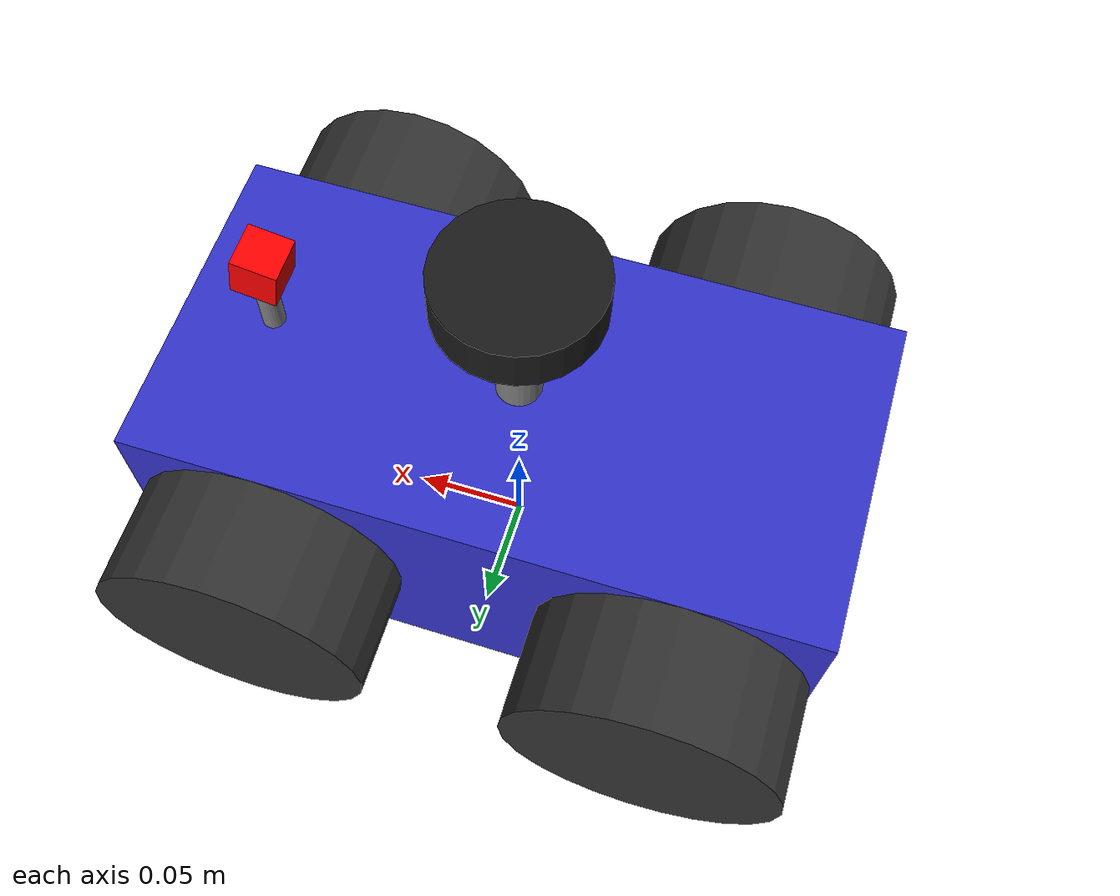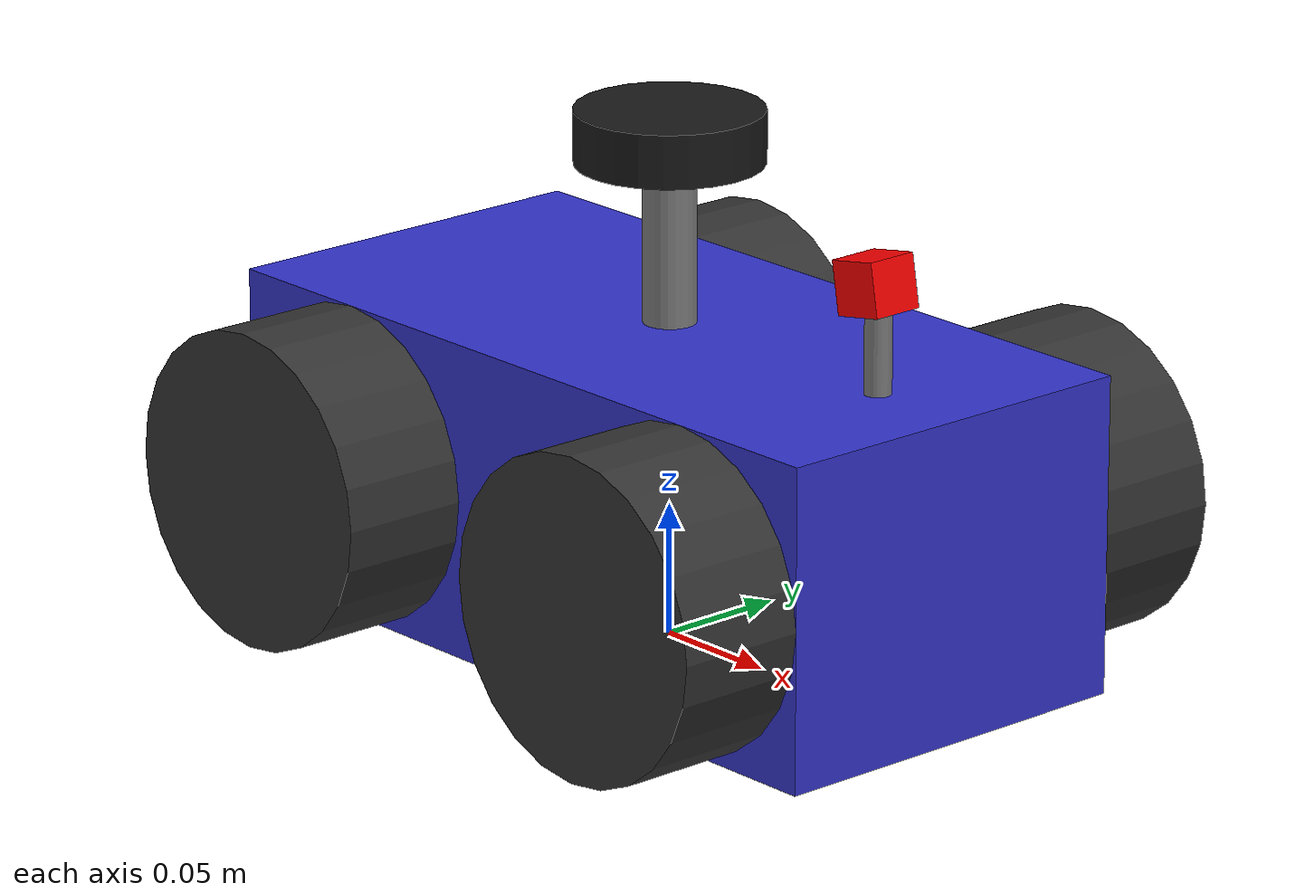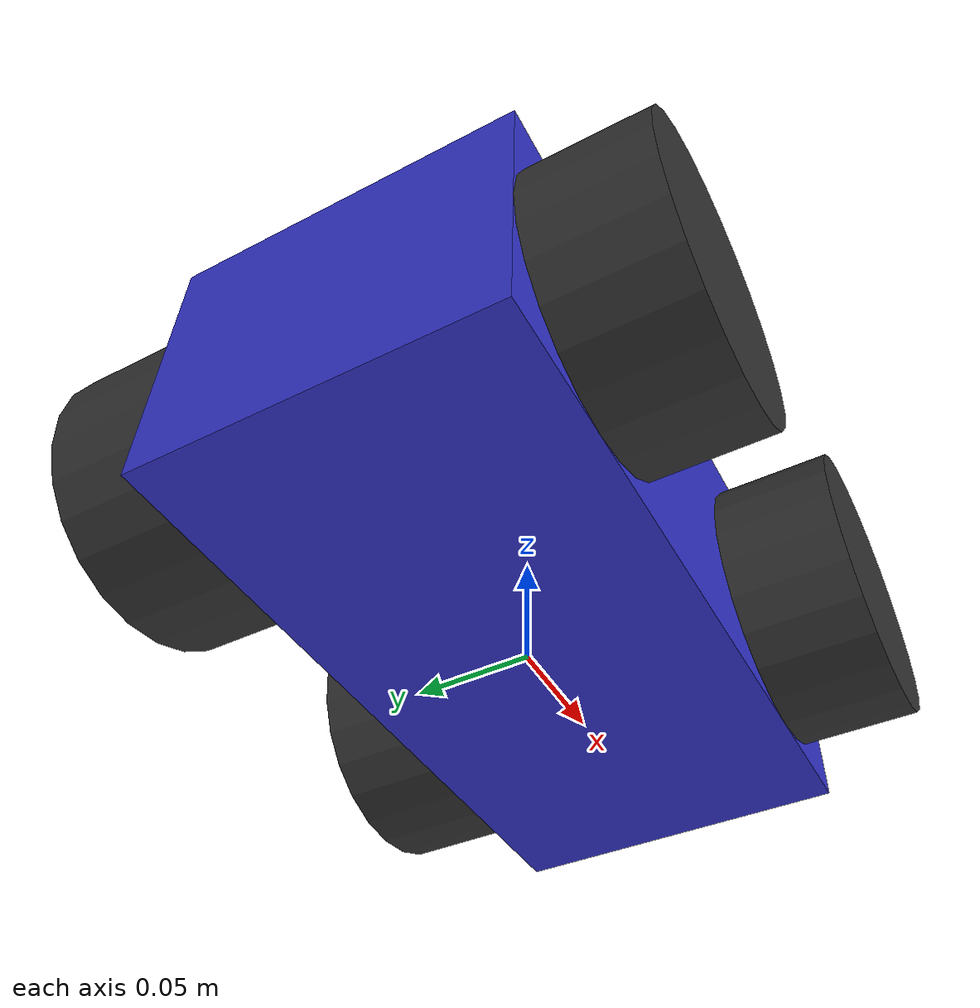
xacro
<!-- 组合小车底盘与摄像头与雷达 -->
<robot name="my_car_camera" xmlns:xacro="http://wiki.ros.org/xacro">
    <xacro:include filename="00car_param.xacro" />
    <xacro:include filename="01car_box.xacro" />
    <xacro:include filename="02car_wheel.xacro" />
    <xacro:include filename="03car_camera.xacro" />
    <xacro:include filename="04car_laser.xacro" />
</robot>

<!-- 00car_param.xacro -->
<robot xmlns:xacro="http://www.ros.org/wiki/xacro" name="mecanum_robot">
  <!-- 定义一些常用参数 -->
  <xacro:property name="base_length" value="0.3" />
  <xacro:property name="base_width" value="0.15" />
  <xacro:property name="base_height" value="0.12" />
  <xacro:property name="wheel_radius" value="0.06" />
  <xacro:property name="wheel_width" value="0.05" />
  <xacro:property name="wheel_mass" value="0.3" />
  <xacro:property name="base_mass" value="3.0" />
  <xacro:property name="camera_support_radius" value="0.005"/>
  <xacro:property name="camera_support_height" value="0.03"/>
  <xacro:property name="camera_size" value="0.02" />
  <xacro:property name="laser_radius" value="0.035" />
  <xacro:property name="laser_height" value="0.02" />
  <xacro:property name="support_radius" value="0.01" />
  <xacro:property name="support_height" value="0.06" />
</robot>

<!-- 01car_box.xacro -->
<robot xmlns:xacro="http://www.ros.org/wiki/xacro" name="mecanum_robot">
  <!-- base_footprint: 地面投影坐标系 -->
  <link name="base_footprint">
    <visual>
      <origin xyz="0 0 0" rpy="0 0 0"/>
      <geometry>
        <sphere radius="0.001"/>
      </geometry>
    </visual>
  </link>
  <joint name="base_footprint_joint" type="fixed">
    <parent link="base_footprint"/>
    <child link="base_link"/>
    <origin xyz="0 0 ${wheel_radius}" rpy="0 0 0"/>
  </joint>
  <!-- 底盘基座 -->
  <link name="base_link">
    <visual>
      <origin xyz="0 0 0" rpy="0 0 0"/>
      <geometry>
        <box size="${base_length} ${base_width} ${base_height}"/>
      </geometry>
      <material name="blue">
        <color rgba="0.2 0.2 0.8 1.0"/>
      </material>
    </visual>
    <collision>
      <origin xyz="0 0 0" rpy="0 0 0"/>
      <geometry>
        <box size="${base_length} ${base_width} ${base_height}"/>
      </geometry>
    </collision>
    <inertial>
      <mass value="${base_mass}"/>
      <origin xyz="0 0 0" rpy="0 0 0"/>
      <inertia ixx="${base_mass*(base_width*base_width+base_height*base_height)/12}"
               ixy="0" ixz="0"
               iyy="${base_mass*(base_length*base_length+base_height*base_height)/12}"
               iyz="0"
               izz="${base_mass*(base_length*base_length+base_width*base_width)/12}"/>
    </inertial>
  </link>
  <!-- 底盘Gazebo配置 -->
  <gazebo reference="base_link">
    <material>Gazebo/Red</material>
    <gravity>true</gravity>
  </gazebo>
</robot>

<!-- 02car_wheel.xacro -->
<robot xmlns:xacro="http://www.ros.org/wiki/xacro" name="mecanum_robot">
    <!-- 麦克纳姆轮宏定义 -->
    <xacro:macro name="mecanum_wheel" params="prefix reflect_lr reflect_fb">
        <link name="${prefix}_wheel">
            <visual>
                <origin xyz="0 0 0" rpy="${pi/2} 0 0"/>
                <geometry>
                    <cylinder radius="${wheel_radius}" length="${wheel_width}"/>
                </geometry>
                <material name="black">
                    <color rgba="0.2 0.2 0.2 1.0"/>
                </material>
            </visual>
            <collision>
                <origin xyz="0 0 0" rpy="${pi/2} 0 0"/>
                <geometry>
                    <cylinder radius="${wheel_radius}" length="${wheel_width}"/>
                </geometry>
            </collision>
            <inertial>
                <mass value="${wheel_mass}"/>
                <origin xyz="0 0 0" rpy="${pi/2} 0 0"/>
                <inertia ixx="${wheel_mass*(3*wheel_radius*wheel_radius+wheel_width*wheel_width)/12}"
                 ixy="0" ixz="0"
                 iyy="${wheel_mass*(3*wheel_radius*wheel_radius+wheel_width*wheel_width)/12}"
                 iyz="0"
                 izz="${wheel_mass*wheel_radius*wheel_radius/2}"/>
            </inertial>
        </link>
        <joint name="${prefix}_wheel_joint" type="continuous">
            <parent link="base_link"/>
            <child link="${prefix}_wheel"/>
            <origin xyz="${reflect_fb*(base_length/2-wheel_radius)} ${reflect_lr*(base_width/2+wheel_width/2)} 0" rpy="0 0 0"/>
            <axis xyz="0 1 0"/>
        </joint>
        <!-- Gazebo配置 -->
        <gazebo reference="${prefix}_wheel">
            <material>Gazebo/Orange</material>
            <mu1>1</mu1>
            <mu2>1</mu2>
            <kp>1000000.0</kp>
            <kd>10.0</kd>
            <minDepth>0.001</minDepth>
            <!-- 最小接触深度 -->
            <maxVel>1.0</maxVel>
            <!-- 最大速度 -->
            <fdir1>1 0 0</fdir1>
            <!-- 摩擦方向 -->
        </gazebo>
    </xacro:macro>
    <!-- 创建四个麦克纳姆轮 -->
    <xacro:mecanum_wheel prefix="front_left" reflect_lr="1" reflect_fb="1"/>
    <xacro:mecanum_wheel prefix="front_right" reflect_lr="-1" reflect_fb="1"/>
    <xacro:mecanum_wheel prefix="rear_left" reflect_lr="1" reflect_fb="-1"/>
    <xacro:mecanum_wheel prefix="rear_right" reflect_lr="-1" reflect_fb="-1"/>
    <!-- 传动实现:用于连接控制器与关节 -->
    <xacro:macro name="joint_trans" params="joint_name">
        <!-- Transmission is important to link the joints and the controller -->
        <transmission name="${joint_name}_trans">
            <type>transmission_interface/SimpleTransmission</type>
            <joint name="${joint_name}">
                <hardwareInterface>hardware_interface/VelocityJointInterface</hardwareInterface>
            </joint>
            <actuator name="${joint_name}_motor">
                <hardwareInterface>hardware_interface/VelocityJointInterface</hardwareInterface>
                <mechanicalReduction>1</mechanicalReduction>
            </actuator>
        </transmission>
    </xacro:macro>
    <!-- 每一个驱动轮都需要配置传动装置 -->
    <xacro:joint_trans joint_name="front_left_wheel_joint" />
    <xacro:joint_trans joint_name="front_right_wheel_joint" />
    <xacro:joint_trans joint_name="rear_left_wheel_joint" />
    <xacro:joint_trans joint_name="rear_right_wheel_joint" />
    <!-- 麦克纳姆轮控制器 -->
    <gazebo>
        <plugin name="mecanum_controller" filename="libgazebo_ros_planar_move.so">
            <commandTopic>cmd_vel</commandTopic>
            <odometryTopic>odom</odometryTopic>
            <odometryFrame>odom</odometryFrame>
            <leftFrontJoint>front_left_wheel_joint</leftFrontJoint>
            <rightFrontJoint>front_right_wheel_joint</rightFrontJoint>
            <leftRearJoint>rear_left_wheel_joint</leftRearJoint>
            <rightRearJoint>rear_right_wheel_joint</rightRearJoint>
            <wheelSeparation>${base_width + wheel_width}</wheelSeparation>
            <wheelDiameter>${2*wheel_radius}</wheelDiameter>
            <odometryRate>100.0</odometryRate>
            <robotBaseFrame>base_footprint</robotBaseFrame>
            <publishTF>true</publishTF>
            <publishOdomTF>true</publishOdomTF>
            <torque>20</torque>
            <!-- 添加足够的驱动扭矩 -->
        </plugin>
    </gazebo>
</robot>

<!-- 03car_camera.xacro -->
<robot xmlns:xacro="http://www.ros.org/wiki/xacro" name="mecanum_robot">
    <!-- 摄像头支架 -->
    <link name="camera_support">
        <visual>
            <origin xyz="0 0 0" rpy="0 0 0" />
            <geometry>
                <cylinder radius="${camera_support_radius}" length="${camera_support_height}" />
            </geometry>
            <material name="Gray">
                <color rgba="0.5 0.5 0.5 1.0" />
            </material>
        </visual>
        <collision>
            <origin xyz="0 0 0" rpy="0 0 0" />
            <geometry>
                <cylinder radius="${camera_support_radius}" length="${camera_support_height}" />
            </geometry>
        </collision>
        <inertial>
            <mass value="0.1" />
            <origin xyz="0 0 0" rpy="0 0 0" />
            <inertia ixx="0.00001" ixy="0" ixz="0" iyy="0.00001" iyz="0" izz="0.00001" />
        </inertial>
    </link>
    <joint name="camera_support_joint" type="fixed">
        <parent link="base_link" />
        <child link="camera_support" />
        <origin xyz="${base_length/2 - camera_size*2} 0 ${base_height/2 + camera_support_height/2}"
            rpy="0 0 0" />
    </joint>
    <gazebo reference="camera_support">
        <material>Gazebo/Gray</material>
    </gazebo>
    <!-- 中间支架 -->
    <link name="camera_mount" />

    <joint name="camera_mount_joint" type="fixed">
        <parent link="camera_support" />
        <child link="camera_mount" />
        <origin xyz="0 0 ${camera_support_height/2}" rpy="0 -0.174 0" />
    </joint>
    <!-- 摄像头 -->
    <link name="camera_link">
        <visual>
            <origin xyz="0 0 0" rpy="0 0 0" />
            <geometry>
                <box size="${camera_size} ${camera_size} ${camera_size}" />
            </geometry>
            <material name="red">
                <color rgba="1.0 0.0 0.0 1.0" />
            </material>
        </visual>
        <collision>
            <origin xyz="0 0 0" rpy="0 0 0" />
            <geometry>
                <box size="${camera_size} ${camera_size} ${camera_size}" />
            </geometry>
        </collision>
        <inertial>
            <mass value="0.1" />
            <origin xyz="0 0 0" rpy="0 0 0" />
            <inertia ixx="0.00001" ixy="0" ixz="0" iyy="0.00001" iyz="0" izz="0.00001" />
        </inertial>
    </link>
    <joint name="camera_joint" type="fixed">
        <parent link="camera_mount" />
        <child link="camera_link" />
        <origin xyz="0 0 ${camera_size/2}" rpy="0 0 0" />
    </joint>
    <!-- 摄像头 Gazebo 插件 -->
    <gazebo reference="camera_link">
        <material>Gazebo/Gray</material>
        <sensor type="camera" name="camera">
            <update_rate>30.0</update_rate>
            <camera name="head">
                <horizontal_fov>1.3962634</horizontal_fov>
                <image>
                    <width>640</width>
                    <height>480</height>
                    <format>R8G8B8</format>
                </image>
                <clip>
                    <near>0.02</near>
                    <far>300</far>
                </clip>
                <noise>
                    <type>gaussian</type>
                    <mean>0.0</mean>
                    <stddev>0.007</stddev>
                </noise>
            </camera>
            <plugin name="camera_controller" filename="libgazebo_ros_camera.so">
                <alwaysOn>true</alwaysOn>
                <updateRate>30.0</updateRate>
                <cameraName>camera</cameraName>
                <imageTopicName>image_raw</imageTopicName>
                <cameraInfoTopicName>camera_info</cameraInfoTopicName>
                <frameName>camera_link</frameName>
            </plugin>
        </sensor>
    </gazebo>
</robot>

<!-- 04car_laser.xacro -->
<robot xmlns:xacro="http://www.ros.org/wiki/xacro" name="mecanum_robot">
    <!-- 2D激光雷达支架 -->
    <link name="laser_support_link">
        <visual>
            <origin xyz="0 0 0" rpy="0 0 0"/>
            <geometry>
                <cylinder radius="${support_radius}" length="${support_height}"/>
            </geometry>
            <material name="grey">
                <color rgba="0.5 0.5 0.5 1.0"/>
            </material>
        </visual>
        <collision>
            <origin xyz="0 0 0" rpy="0 0 0"/>
            <geometry>
                <cylinder radius="${support_radius}" length="${support_height}"/>
            </geometry>
        </collision>
        <inertial>
            <mass value="0.1"/>
            <origin xyz="0 0 0" rpy="0 0 0"/>
            <inertia ixx="0.0001" ixy="0" ixz="0" iyy="0.0001" iyz="0" izz="0.00001"/>
        </inertial>
    </link>
    <joint name="laser_support_joint" type="fixed">
        <parent link="base_link"/>
        <child link="laser_support_link"/>
        <origin xyz="0 0 ${base_height/2 + support_height/2}" rpy="0 0 0"/>
    </joint>
    <gazebo reference="laser_support_link">
        <material>Gazebo/Grey</material>
    </gazebo>
    <!-- 2D激光雷达 -->
    <link name="laser_link">
        <visual>
            <origin xyz="0 0 0" rpy="0 0 0"/>
            <geometry>
                <cylinder radius="${laser_radius}" length="${laser_height}"/>
            </geometry>
            <material name="black">
                <color rgba="0.1 0.1 0.1 1.0"/>
            </material>
        </visual>
        <collision>
            <origin xyz="0 0 0" rpy="0 0 0"/>
            <geometry>
                <cylinder radius="${laser_radius}" length="${laser_height}"/>
            </geometry>
        </collision>
        <inertial>
            <mass value="0.2"/>
            <origin xyz="0 0 0" rpy="0 0 0"/>
            <inertia ixx="0.0001" ixy="0" ixz="0" iyy="0.0001" iyz="0" izz="0.0001"/>
        </inertial>
    </link>
    <joint name="laser_joint" type="fixed">
        <parent link="laser_support_link"/>
        <child link="laser_link"/>
        <origin xyz="0 0 ${support_height/2 + laser_height/2}" rpy="0 0 0"/>
    </joint>
    <!-- 激光雷达 Gazebo 插件 -->
   <gazebo reference="laser_link">
    <material>Gazebo/Green</material>
    <sensor type="ray" name="rplidar">
        <pose>0 0 0 0 0 0</pose>
        <visualize>false</visualize>
        <update_rate>6</update_rate>
        <ray>
            <scan>
                <horizontal>
                    <samples>360</samples>
                    <resolution>1</resolution>
                    <min_angle>-3.1415926</min_angle>
                    <max_angle>3.1415926</max_angle>
                </horizontal>
            </scan>
            <range>
                <min>0.15</min>
                <max>10</max>
                <resolution>0.01</resolution>
            </range>
            <noise>
                <type>gaussian</type>
                <mean>0.0</mean>
                <stddev>0.01</stddev>
            </noise>
        </ray>
        <plugin name="gazebo_ros_rplidar_controller" filename="libgazebo_ros_laser.so">
            <topicName>scan</topicName>
            <frameName>laser_link</frameName>
        </plugin>
    </sensor>
</gazebo>
</robot>
